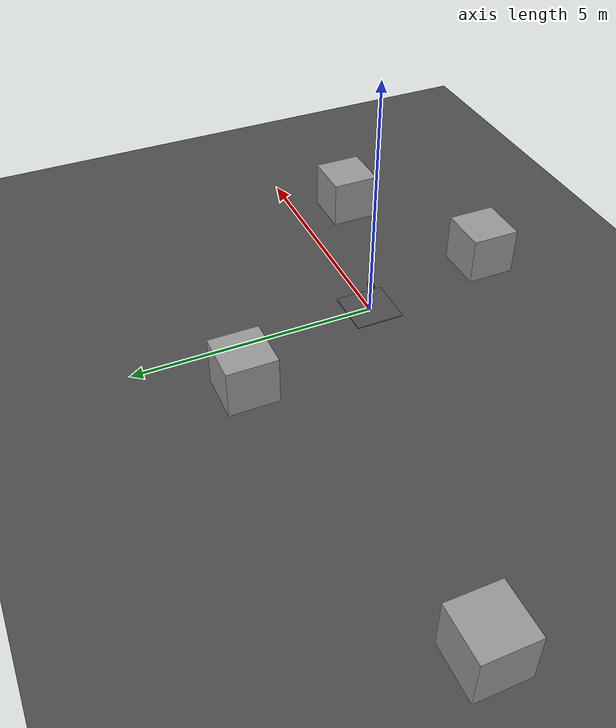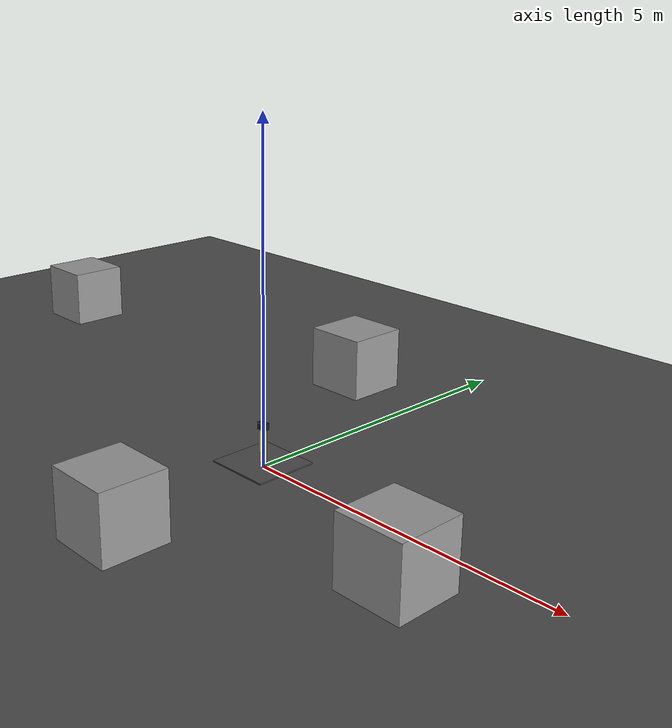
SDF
<sdf version="1.7">
 <world name="puzzle_world">
  <light name="sun" type="directional">
   <pose>0 0 10 0 -0 0</pose>
   <diffuse>0.8 0.8 0.8 1</diffuse>
   <specular>0.2 0.2 0.2 1</specular>
   <attenuation>
    <range>1000</range>
    <constant>0.9</constant>
    <linear>0.01</linear>
    <quadratic>0.001</quadratic>
   </attenuation>
   <direction>-0.5 0.1 -0.9</direction>
   <spot><inner_angle>0</inner_angle><outer_angle>0</outer_angle><falloff>0</falloff></spot>
  </light>
  <model name="ground_plane">
   <static>1</static>
   <link name="link">
    <collision name="collision">
     <geometry><plane><normal>0 0 1</normal><size>100 100</size></plane></geometry>
     <surface>
      <contact><collide_bitmask>65535</collide_bitmask></contact>
      <friction><ode><mu>100</mu><mu2>50</mu2></ode></friction>
     </surface>
    </collision>
    <visual name="visual">
     <cast_shadows>0</cast_shadows>
     <geometry><plane><normal>0 0 1</normal><size>100 100</size></plane></geometry>
     <material>
      <script><uri>file://media/materials/scripts/gazebo.material</uri><name>Gazebo/Grey</name></script>
     </material>
    </visual>
   </link>
  </model>
  <model name="asphalt_plane">
   <static>1</static>
   <link name="link">
    <collision name="collision"><geometry><box><size>200 200 0.1</size></box></geometry></collision>
    <visual name="visual">
     <cast_shadows>0</cast_shadows>
     <geometry><box><size>200 200 0.1</size></box></geometry>
     <material>
      <script>
       <uri>model://asphalt_plane/materials/scripts</uri>
       <uri>model://asphalt_plane/materials/textures</uri>
       <name>vrc/asphalt</name>
      </script>
     </material>
    </visual>
   </link>
  </model>
  <model name="big_gun2">
   <pose>-0.020208 -0.011179 0.306177 -0.000841 -0 0.002599</pose>
   <static>0</static>
   <link name="link_0">
    <inertial>
     <mass>192.808</mass>
     <inertia><ixx>16.0772</ixx><ixy>0</ixy><ixz>0</ixz><iyy>16.0772</iyy><iyz>0</iyz><izz>32.1347</izz></inertia>
    </inertial>
    <pose>-2.9e-05 0.022288 -0.246578 0 -0 0</pose>
    <visual name="visual">
     <pose>0 0 0.25 0 -0 0</pose>
     <geometry><cylinder><radius>0.05</radius><length>0.5</length></cylinder></geometry>
     <material>
      <lighting>1</lighting>
      <script><uri>file://media/materials/scripts/gazebo.material</uri><name>Gazebo/ZincYellow</name></script>
      <shader type="pixel"/>
     </material>
    </visual>
    <visual name="ModelPreview_0::link_0::visual_1">
     <geometry><box><size>1 1 0.02</size></box></geometry>
     <material>
      <lighting>1</lighting>
      <script><uri>file://media/materials/scripts/gazebo.material</uri><name>Gazebo/DarkGrey</name></script>
      <shader type="pixel"/>
     </material>
    </visual>
    <collision name="collision">
     <geometry><box><size>1 1 0.02</size></box></geometry>
     <surface>
      <friction>
       <ode><mu>1</mu><mu2>1</mu2><fdir1>0 0 0</fdir1><slip1>0</slip1><slip2>0</slip2></ode>
       <torsional>
        <coefficient>1</coefficient>
        <patch_radius>0</patch_radius>
        <surface_radius>0</surface_radius>
        <use_patch_radius>1</use_patch_radius>
        <ode><slip>0</slip></ode>
       </torsional>
      </friction>
      <contact>
       <collide_without_contact>0</collide_without_contact>
       <collide_without_contact_bitmask>1</collide_without_contact_bitmask>
       <collide_bitmask>1</collide_bitmask>
       <ode>
        <soft_cfm>0</soft_cfm>
        <soft_erp>0.2</soft_erp>
        <kp>1e+13</kp>
        <kd>1</kd>
        <max_vel>0.01</max_vel>
        <min_depth>0</min_depth>
       </ode>
       <bullet>
        <split_impulse>1</split_impulse>
        <split_impulse_penetration_threshold>-0.01</split_impulse_penetration_threshold>
        <soft_cfm>0</soft_cfm>
        <soft_erp>0.2</soft_erp>
        <kp>1e+13</kp>
        <kd>1</kd>
       </bullet>
      </contact>
     </surface>
    </collision>
    <collision name="collision_1">
     <pose>0 0 0.25 0 -0 0</pose>
     <geometry><cylinder><radius>0.05</radius><length>0.5</length></cylinder></geometry>
     <surface>
      <friction>
       <ode><mu>1</mu><mu2>1</mu2><fdir1>0 0 0</fdir1><slip1>0</slip1><slip2>0</slip2></ode>
       <torsional>
        <coefficient>1</coefficient>
        <patch_radius>0</patch_radius>
        <surface_radius>0</surface_radius>
        <use_patch_radius>1</use_patch_radius>
        <ode><slip>0</slip></ode>
       </torsional>
      </friction>
      <contact>
       <collide_without_contact>0</collide_without_contact>
       <collide_without_contact_bitmask>1</collide_without_contact_bitmask>
       <collide_bitmask>1</collide_bitmask>
       <ode>
        <soft_cfm>0</soft_cfm>
        <soft_erp>0.2</soft_erp>
        <kp>1e+13</kp>
        <kd>1</kd>
        <max_vel>0.01</max_vel>
        <min_depth>0</min_depth>
       </ode>
       <bullet>
        <split_impulse>1</split_impulse>
        <split_impulse_penetration_threshold>-0.01</split_impulse_penetration_threshold>
        <soft_cfm>0</soft_cfm>
        <soft_erp>0.2</soft_erp>
        <kp>1e+13</kp>
        <kd>1</kd>
       </bullet>
      </contact>
     </surface>
    </collision>
   </link>
   <link name="link_2">
    <inertial>
     <mass>4.63717</mass>
     <inertia>
      <ixx>0.0180888</ixx>
      <ixy>0</ixy>
      <ixz>0</ixz>
      <iyy>0.0180888</iyy>
      <iyz>0</iyz>
      <izz>0.00646458</izz>
     </inertia>
    </inertial>
    <pose>0 0.02 0.31 0 -0 0</pose>
    <visual name="visual">
     <geometry><box><size>0.15 0.1 0.1</size></box></geometry>
     <material>
      <lighting>1</lighting>
      <script><uri>file://media/materials/scripts/gazebo.material</uri><name>Gazebo/Black</name></script>
      <shader type="pixel"/>
     </material>
    </visual>
    <collision name="collision">
     <geometry><cylinder><radius>0.052803</radius><length>0.196075</length></cylinder></geometry>
     <surface>
      <friction>
       <ode><mu>1</mu><mu2>1</mu2><fdir1>0 0 0</fdir1><slip1>0</slip1><slip2>0</slip2></ode>
       <torsional>
        <coefficient>1</coefficient>
        <patch_radius>0</patch_radius>
        <surface_radius>0</surface_radius>
        <use_patch_radius>1</use_patch_radius>
        <ode><slip>0</slip></ode>
       </torsional>
      </friction>
      <contact>
       <collide_without_contact>0</collide_without_contact>
       <collide_without_contact_bitmask>1</collide_without_contact_bitmask>
       <collide_bitmask>1</collide_bitmask>
       <ode>
        <soft_cfm>0</soft_cfm>
        <soft_erp>0.2</soft_erp>
        <kp>1e+13</kp>
        <kd>1</kd>
        <max_vel>0.01</max_vel>
        <min_depth>0</min_depth>
       </ode>
       <bullet>
        <split_impulse>1</split_impulse>
        <split_impulse_penetration_threshold>-0.01</split_impulse_penetration_threshold>
        <soft_cfm>0</soft_cfm>
        <soft_erp>0.2</soft_erp>
        <kp>1e+13</kp>
        <kd>1</kd>
       </bullet>
      </contact>
     </surface>
    </collision>
   </link>
   <link name="bullet_spawner">
    <pose>0 -0.1 -0.25 0 1.57 0</pose>
    <inertial>
     <inertia><ixx>1</ixx><ixy>0</ixy><ixz>0</ixz><iyy>1</iyy><iyz>0</iyz><izz>1</izz></inertia>
     <mass>1</mass>
    </inertial>
   </link>
   <joint name="link_0_JOINT_0" type="fixed">
    <parent>link_0</parent>
    <child>link_2</child>
    <pose>0 0 -0.045 0 -0 0</pose>
    <axis>
     <xyz>0 1 0</xyz>
     <limit>
      <lower>-1.79769e+308</lower>
      <upper>1.79769e+308</upper>
      <effort>-1</effort>
      <velocity>-1</velocity>
     </limit>
     <dynamics>
      <spring_reference>0</spring_reference>
      <spring_stiffness>0</spring_stiffness>
      <damping>0</damping>
      <friction>0</friction>
     </dynamics>
    </axis>
    <physics>
     <ode><limit><cfm>0</cfm><erp>0.2</erp></limit><suspension><cfm>0</cfm><erp>0.2</erp></suspension></ode>
    </physics>
   </joint>
   <plugin name="Gun2Plugin" filename="libGun2Plugin.so"><model name="olive"/></plugin>
  </model>
  <physics name="default_physics" default="0" type="ode">
   <ode>
    <solver>
     <type>quick</type>
     <iters>10</iters>
     <sor>1.3</sor>
     <use_dynamic_moi_rescaling>0</use_dynamic_moi_rescaling>
    </solver>
    <constraints>
     <cfm>0</cfm>
     <erp>0.2</erp>
     <contact_max_correcting_vel>100</contact_max_correcting_vel>
     <contact_surface_layer>0.001</contact_surface_layer>
    </constraints>
   </ode>
   <max_step_size>0.004</max_step_size>
   <real_time_factor>1</real_time_factor>
   <real_time_update_rate>250</real_time_update_rate>
  </physics>
  <gravity>0 0 -9.8</gravity>
  <magnetic_field>6e-06 2.3e-05 -4.2e-05</magnetic_field>
  <atmosphere type="adiabatic"/>
  <scene><ambient>0.4 0.4 0.4 1</ambient><background>0.7 0.7 0.7 1</background><shadows>1</shadows></scene>
  <spherical_coordinates>
   <surface_model>EARTH_WGS84</surface_model>
   <latitude_deg>0</latitude_deg>
   <longitude_deg>0</longitude_deg>
   <elevation>0</elevation>
   <heading_deg>0</heading_deg>
  </spherical_coordinates>
  <model name="unit_box">
   <pose>-1.25154 3.17117 0.550003 1.8e-05 5e-06 -0.000177</pose>
   <link name="link">
    <inertial>
     <mass>1</mass>
     <inertia>
      <ixx>0.166667</ixx>
      <ixy>0</ixy>
      <ixz>0</ixz>
      <iyy>0.166667</iyy>
      <iyz>0</iyz>
      <izz>0.166667</izz>
     </inertia>
    </inertial>
    <collision name="collision"><geometry><box><size>1 1 1</size></box></geometry></collision>
    <visual name="visual">
     <geometry><box><size>1 1 1</size></box></geometry>
     <material>
      <script><name>Gazebo/Grey</name><uri>file://media/materials/scripts/gazebo.material</uri></script>
     </material>
    </visual>
   </link>
  </model>
  <model name="unit_box_0">
   <pose>0.400673 -2.81121 0.549946 0.000103 -1e-06 -0.000132</pose>
   <link name="link">
    <inertial>
     <mass>1</mass>
     <inertia>
      <ixx>0.166667</ixx>
      <ixy>0</ixy>
      <ixz>0</ixz>
      <iyy>0.166667</iyy>
      <iyz>0</iyz>
      <izz>0.166667</izz>
     </inertia>
    </inertial>
    <collision name="collision"><geometry><box><size>1 1 1</size></box></geometry></collision>
    <visual name="visual">
     <geometry><box><size>1 1 1</size></box></geometry>
     <material>
      <script><name>Gazebo/Grey</name><uri>file://media/materials/scripts/gazebo.material</uri></script>
     </material>
    </visual>
   </link>
  </model>
  <model name="unit_box_1">
   <pose>-7.61829 1.99234 0.550001 -2.2e-05 -4e-06 -8.6e-05</pose>
   <link name="link">
    <inertial>
     <mass>1</mass>
     <inertia>
      <ixx>0.166667</ixx>
      <ixy>0</ixy>
      <ixz>0</ixz>
      <iyy>0.166667</iyy>
      <iyz>0</iyz>
      <izz>0.166667</izz>
     </inertia>
    </inertial>
    <collision name="collision"><geometry><box><size>1 1 1</size></box></geometry></collision>
    <visual name="visual">
     <geometry><box><size>1 1 1</size></box></geometry>
     <material>
      <script><name>Gazebo/Grey</name><uri>file://media/materials/scripts/gazebo.material</uri></script>
     </material>
    </visual>
   </link>
  </model>
  <model name="unit_box_2">
   <pose>3.46491 -1.09708 0.549947 -0.0001 1e-06 -4.1e-05</pose>
   <link name="link">
    <inertial>
     <mass>1</mass>
     <inertia>
      <ixx>0.166667</ixx>
      <ixy>0</ixy>
      <ixz>0</ixz>
      <iyy>0.166667</iyy>
      <iyz>0</iyz>
      <izz>0.166667</izz>
     </inertia>
    </inertial>
    <collision name="collision"><geometry><box><size>1 1 1</size></box></geometry></collision>
    <visual name="visual">
     <geometry><box><size>1 1 1</size></box></geometry>
     <material>
      <script><name>Gazebo/Grey</name><uri>file://media/materials/scripts/gazebo.material</uri></script>
     </material>
    </visual>
   </link>
  </model>
 </world>
</sdf>
